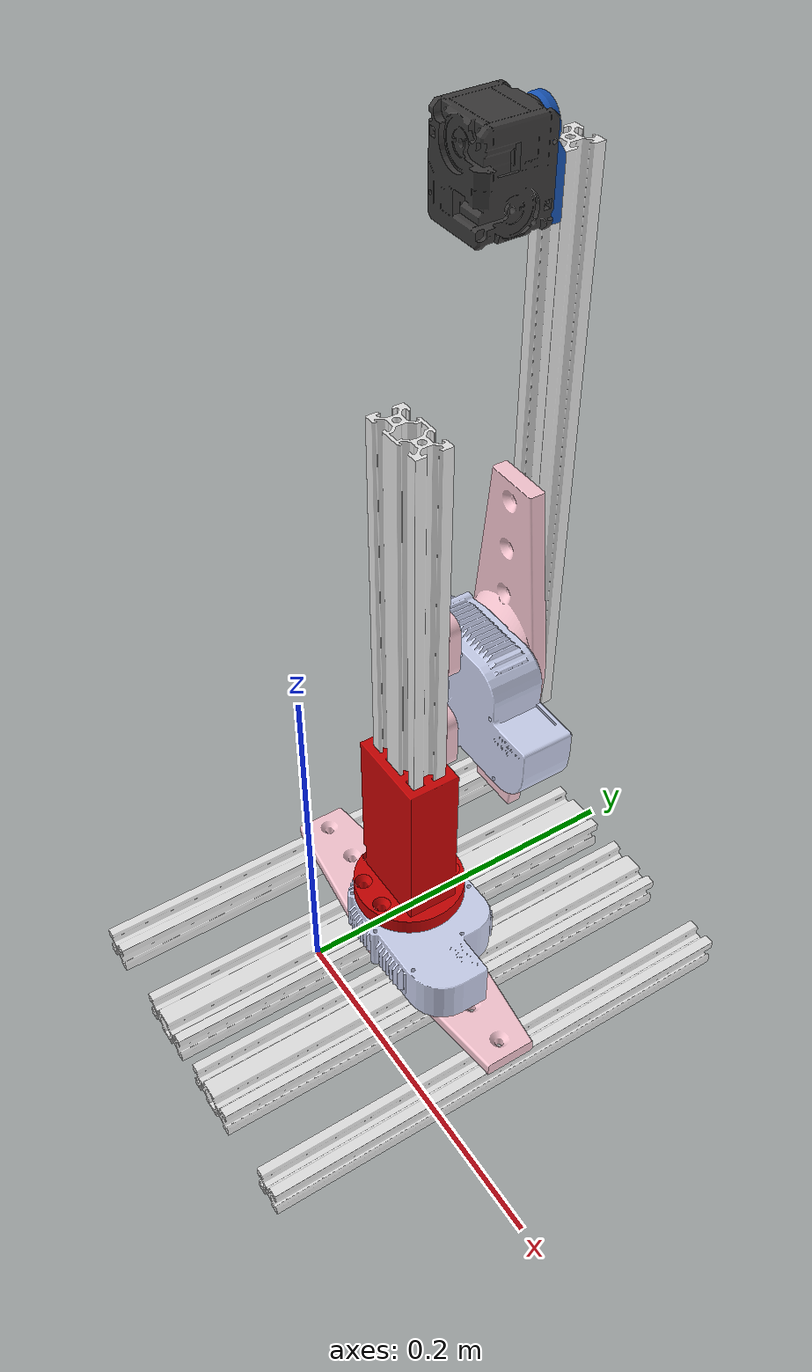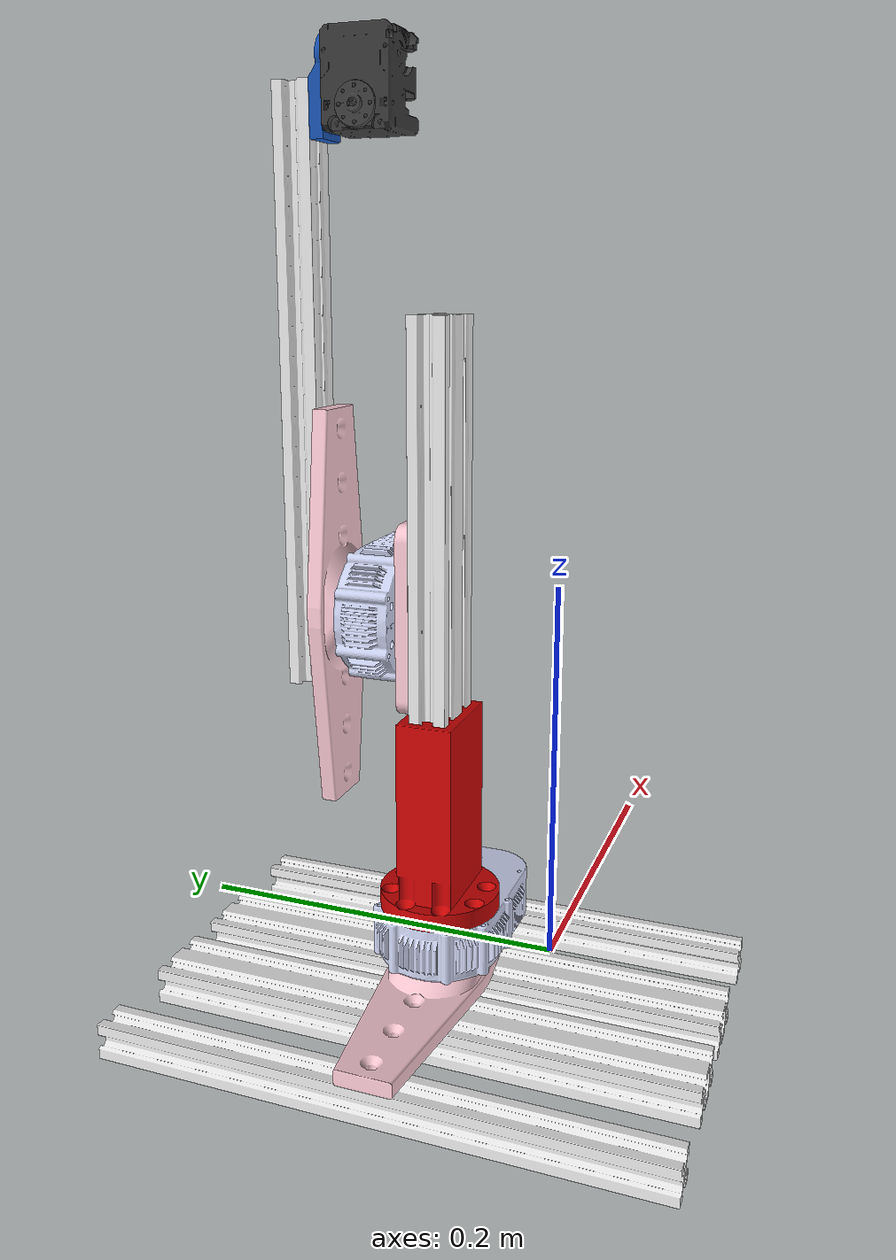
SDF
<sdf version="1.6">
<model name="armbot">
<link name="base_link">
<frame name="base_link_frame"><pose>0 0 0 0 -0 0</pose></frame>
<visual name="base_link_0_hebirotor2020_visual">
<pose>-1.4954010252310467877e-12 0.062950280607105862929 -0.014800447380542768733 -3.141592653589793116 6.1629758220391415926e-32 1.3684555315672011322e-48</pose>
<geometry>
<mesh><uri>file://hebirotor2020.stl</uri></mesh>
</geometry>
<material><ambient>0.97254901960784312376 0.78039215686274510109 0.82352941176470584317 1</ambient><diffuse>0.97254901960784312376 0.78039215686274510109 0.82352941176470584317 1</diffuse><specular>0.1 0.1 0.1 1</specular><emissive>0 0 0 0</emissive></material>
</visual>
<collision name="base_link_0_hebirotor2020_visual">
<pose>-1.4954010252310467877e-12 0.062950280607105862929 -0.014800447380542768733 -3.141592653589793116 6.1629758220391415926e-32 1.3684555315672011322e-48</pose>
<geometry>
<mesh><uri>file://armbot_description/onshape_to_robot/armbot/hebirotor2020.stl</uri></mesh>
</geometry>
</collision>
<inertial>
<pose frame="base_link_frame">1.471073017230224444e-06 0.062950447604268128243 -0.024329139199410744487 0 0 0</pose>
<mass>0.10897536745364015676</mass>
<inertia><ixx>2.0995325698152185787e-05</ixx><ixy>7.161065988428246499e-10</ixy><ixz>-5.0057125776953910516e-10</ixz><iyy>0.00033109911054740619922</iyy><iyz>-5.8223854087903742578e-11</iyz><izz>0.0003490797833931392276</izz></inertia>
</inertial>
</link>

<link name="2040_t-slot_(1ft)">
<frame name="2040_t-slot_(1ft)_frame"><pose>0 0 0 0 -0 0</pose></frame>
<visual name="2040_t-slot_(1ft)_0_2040_t-slot_(1ft)_visual">
<pose>-0.029018909366434194469 0.062950280607105821296 -0.040500447380543092013 -1.570796326794896558 -1.5707963267948961139 0</pose>
<geometry>
<mesh><uri>file://2040_t-slot_(1ft).stl</uri></mesh>
</geometry>
<material><ambient>0.90196078431372550543 0.90196078431372550543 0.90196078431372550543 1</ambient><diffuse>0.90196078431372550543 0.90196078431372550543 0.90196078431372550543 1</diffuse><specular>0.1 0.1 0.1 1</specular><emissive>0 0 0 0</emissive></material>
</visual>
<collision name="2040_t-slot_(1ft)_0_2040_t-slot_(1ft)_visual">
<pose>-0.029018909366434194469 0.062950280607105821296 -0.040500447380543092013 -1.570796326794896558 -1.5707963267948961139 0</pose>
<geometry>
<mesh><uri>file://armbot_description/onshape_to_robot/armbot/2040_t-slot_(1ft).stl</uri></mesh>
</geometry>
</collision>
<inertial>
<pose frame="2040_t-slot_(1ft)_frame">-0.028518281485979575518 0.062950280607105835173 -0.040500447380543071196 0 0 0</pose>
<mass>0.25219173558876550878</mass>
<inertia><ixx>0.0019627392288486733216</ixx><ixy>2.2357954006535848664e-19</ixy><ixz>4.4935318686711459992e-19</ixz><iyy>5.1086237781545882535e-05</iyy><iyz>1.0567838541281127762e-19</iyz><izz>0.0019932434921116392104</izz></inertia>
</inertial>
</link>

<joint name="Base2040_To_Base_HebiRotor2020" type="fixed">
<pose>-0.038518909366434213315 0.062950280607105876807 -0.030500447380542996395 1.7347234759768063549e-16 -1.1102230246249800328e-16 1.1102230246371817388e-16</pose>
<parent>base_link</parent>
<child>2040_t-slot_(1ft)</child>
<axis>
<xyz>0 0 1</xyz>
<limit><effort>1</effort><velocity>20</velocity></limit>
</axis>
</joint>

<link name="hebi_rotor_disc_">
<frame name="hebi_rotor_disc__frame"><pose>0 0 0 0 -0 0</pose></frame>
<visual name="hebi_rotor_disc__0_hebi_rotor_disc__visual">
<pose>-1.4954010252310467877e-12 0.062950280607105862929 0.0015495526194574602008 1.5707963267948970021 -2.2204460492511265937e-16 -2.2204460492878865258e-16</pose>
<geometry>
<mesh><uri>file://hebi_rotor_disc_.stl</uri></mesh>
</geometry>
<material><ambient>0.79607843137254896693 0.82352941176470584317 0.9372549019607843146 1</ambient><diffuse>0.79607843137254896693 0.82352941176470584317 0.9372549019607843146 1</diffuse><specular>0.1 0.1 0.1 1</specular><emissive>0 0 0 0</emissive></material>
</visual>
<collision name="hebi_rotor_disc__0_hebi_rotor_disc__visual">
<pose>-1.4954010252310467877e-12 0.062950280607105862929 0.0015495526194574602008 1.5707963267948970021 -2.2204460492511265937e-16 -2.2204460492878865258e-16</pose>
<geometry>
<mesh><uri>file://armbot_description/onshape_to_robot/armbot/hebi_rotor_disc_.stl</uri></mesh>
</geometry>
</collision>
<inertial>
<pose frame="hebi_rotor_disc__frame">5.3210720575163516404e-07 0.062962573548964742565 -0.011059638472179545571 0 0 0</pose>
<mass>0.04989516048000000592</mass>
<inertia><ixx>1.07173576662662712e-05</ixx><ixy>3.2637328668163764693e-13</ixy><ixz>9.0024786475135361292e-11</ixz><iyy>1.0829283098185201329e-05</iyy><iyz>5.8060078117055951969e-10</iyz><izz>2.1283842582398623794e-05</izz></inertia>
</inertial>
</link>

<link name="hebi_stator_">
<frame name="hebi_stator__frame"><pose>0 0 0 0 -0 0</pose></frame>
<visual name="hebi_stator__0_hebi_stator__visual">
<pose>-1.4953940863371428804e-12 0.062950280607105862929 0.0015495526194573181703 1.5707963267948983344 1.9264273792869010058e-15 1.8318679906314514937e-15</pose>
<geometry>
<mesh><uri>file://hebi_stator_.stl</uri></mesh>
</geometry>
<material><ambient>0.79607843137254896693 0.82352941176470584317 0.9372549019607843146 1</ambient><diffuse>0.79607843137254896693 0.82352941176470584317 0.9372549019607843146 1</diffuse><specular>0.1 0.1 0.1 1</specular><emissive>0 0 0 0</emissive></material>
</visual>
<collision name="hebi_stator__0_hebi_stator__visual">
<pose>-1.4953940863371428804e-12 0.062950280607105862929 0.0015495526194573181703 1.5707963267948983344 1.9264273792869010058e-15 1.8318679906314514937e-15</pose>
<geometry>
<mesh><uri>file://armbot_description/onshape_to_robot/armbot/hebi_stator_.stl</uri></mesh>
</geometry>
</collision>
<inertial>
<pose frame="hebi_stator__frame">0.018552404495652048688 0.06049688322172034477 0.0024470792015108735334 0 0 0</pose>
<mass>0.29483503920000003751</mass>
<inertia><ixx>0.00012040144433771510159</ixx><ixy>2.6094887648047714111e-05</ixy><ixz>4.5177550717945621581e-06</ixz><iyy>0.00024371596634354403678</iyy><iyz>-5.7552027333034358279e-07</iyz><izz>0.00032527976775372359312</izz></inertia>
</inertial>
</link>

<link name="hebistatornormal2040">
<frame name="hebistatornormal2040_frame"><pose>0 0 0 0 -0 0</pose></frame>
<visual name="hebistatornormal2040_0_hebistatornormal2040_visual">
<pose>-0.0098365463847162933758 0.062950280607105862929 0.016549552619457365971 -1.5707963267948992225 1.9264273792869014003e-15 1.8318679906314514937e-15</pose>
<geometry>
<mesh><uri>file://hebistatornormal2040.stl</uri></mesh>
</geometry>
<material><ambient>0.78823529411764703401 0.011764705882352941013 0.011764705882352941013 1</ambient><diffuse>0.78823529411764703401 0.011764705882352941013 0.011764705882352941013 1</diffuse><specular>0.1 0.1 0.1 1</specular><emissive>0 0 0 0</emissive></material>
</visual>
<collision name="hebistatornormal2040_0_hebistatornormal2040_visual">
<pose>-0.0098365463847162933758 0.062950280607105862929 0.016549552619457365971 -1.5707963267948992225 1.9264273792869014003e-15 1.8318679906314514937e-15</pose>
<geometry>
<mesh><uri>file://armbot_description/onshape_to_robot/armbot/hebistatornormal2040.stl</uri></mesh>
</geometry>
</collision>
<inertial>
<pose frame="hebistatornormal2040_frame">0.00033814267055101189519 0.062950280472305553126 0.06311610873457988713 0 0 0</pose>
<mass>0.15651906882669003318</mass>
<inertia><ixx>0.00020929689747816688041</ixx><ixy>5.8518426895910304462e-11</ixy><ixz>1.7895630898721491951e-06</ixz><iyy>0.00022791049151855613986</iyy><iyz>-6.7009726734340701588e-13</iyz><izz>6.266390998557995072e-05</izz></inertia>
</inertial>
</link>

<link name="2040_t-slot_(1ft)_2">
<frame name="2040_t-slot_(1ft)_2_frame"><pose>0 0 0 0 -0 0</pose></frame>
<visual name="2040_t-slot_(1ft)_2_0_2040_t-slot_(1ft)_visual">
<pose>-0.00047689739101589370684 0.062940631613406641809 0.17894955261945677538 -3.1415926535897868987 7.6857623156658274501e-16 1.5707963267948956698</pose>
<geometry>
<mesh><uri>file://2040_t-slot_(1ft).stl</uri></mesh>
</geometry>
<material><ambient>0.90196078431372550543 0.90196078431372550543 0.90196078431372550543 1</ambient><diffuse>0.90196078431372550543 0.90196078431372550543 0.90196078431372550543 1</diffuse><specular>0.1 0.1 0.1 1</specular><emissive>0 0 0 0</emissive></material>
</visual>
<collision name="2040_t-slot_(1ft)_2_0_2040_t-slot_(1ft)_visual">
<pose>-0.00047689739101589370684 0.062940631613406641809 0.17894955261945677538 -3.1415926535897868987 7.6857623156658274501e-16 1.5707963267948956698</pose>
<geometry>
<mesh><uri>file://armbot_description/onshape_to_robot/armbot/2040_t-slot_(1ft).stl</uri></mesh>
</geometry>
</collision>
<inertial>
<pose frame="2040_t-slot_(1ft)_2_frame">2.3730489438724701977e-05 0.062940631613406669564 0.17894955261945674763 0 0 0</pose>
<mass>0.25219173558876550878</mass>
<inertia><ixx>0.0019627392288486785257</ixx><ixy>-1.8796002694634971977e-18</ixy><ixz>-1.2085588971229104773e-17</ixz><iyy>0.0019932434921116027812</iyy><iyz>-1.4926959040347885266e-18</iyz><izz>5.1086237781544418862e-05</izz></inertia>
</inertial>
</link>

<link name="hebistatorrightangle2040">
<frame name="hebistatorrightangle2040_frame"><pose>0 0 0 0 -0 0</pose></frame>
<visual name="hebistatorrightangle2040_0_hebistatorrightangle2040_visual">
<pose>-2.8858539977676757709e-06 0.075165431613406705202 0.17894955261945671987 -3.1415926535897926719 -6.3220621250071017558e-15 3.141592653589788231</pose>
<geometry>
<mesh><uri>file://hebistatorrightangle2040.stl</uri></mesh>
</geometry>
<material><ambient>0.97254901960784312376 0.78039215686274510109 0.82352941176470584317 1</ambient><diffuse>0.97254901960784312376 0.78039215686274510109 0.82352941176470584317 1</diffuse><specular>0.1 0.1 0.1 1</specular><emissive>0 0 0 0</emissive></material>
</visual>
<collision name="hebistatorrightangle2040_0_hebistatorrightangle2040_visual">
<pose>-2.8858539977676757709e-06 0.075165431613406705202 0.17894955261945671987 -3.1415926535897926719 -6.3220621250071017558e-15 3.141592653589788231</pose>
<geometry>
<mesh><uri>file://armbot_description/onshape_to_robot/armbot/hebistatorrightangle2040.stl</uri></mesh>
</geometry>
</collision>
<inertial>
<pose frame="hebistatorrightangle2040_frame">-0.0015817821988269868856 0.076429624660878478504 0.17894955261945671987 0 0 0</pose>
<mass>0.026450088103838233222</mass>
<inertia><ixx>2.5671961898540001794e-05</ixx><ixy>4.596717726566595938e-10</ixy><ixz>-1.391860320647691942e-19</ixz><iyy>2.9117912025297513785e-05</iyy><iyz>-1.9572253538770518845e-20</iyz><izz>3.6560949231525005876e-06</izz></inertia>
</inertial>
</link>

<link name="hebi_stator__2">
<frame name="hebi_stator__2_frame"><pose>0 0 0 0 -0 0</pose></frame>
<visual name="hebi_stator__2_0_hebi_stator__visual">
<pose>0.0019971141460020168205 0.094940631613406836764 0.17894955261945674763 3.1415926535897926719 6.3220621250071025446e-15 -5.0792703376599389223e-15</pose>
<geometry>
<mesh><uri>file://hebi_stator_.stl</uri></mesh>
</geometry>
<material><ambient>0.79607843137254896693 0.82352941176470584317 0.9372549019607843146 1</ambient><diffuse>0.79607843137254896693 0.82352941176470584317 0.9372549019607843146 1</diffuse><specular>0.1 0.1 0.1 1</specular><emissive>0 0 0 0</emissive></material>
</visual>
<collision name="hebi_stator__2_0_hebi_stator__visual">
<pose>0.0019971141460020168205 0.094940631613406836764 0.17894955261945674763 3.1415926535897926719 6.3220621250071025446e-15 -5.0792703376599389223e-15</pose>
<geometry>
<mesh><uri>file://armbot_description/onshape_to_robot/armbot/hebi_stator_.stl</uri></mesh>
</geometry>
</collision>
<inertial>
<pose frame="hebi_stator__2_frame">0.020549518643148828589 0.094043105031353144141 0.17649615523407113926 0 0 0</pose>
<mass>0.29483503920000003751</mass>
<inertia><ixx>0.00012040144433770705139</ixx><ixy>-4.5177550717925241968e-06</ixy><ixz>2.6094887648045579588e-05</ixz><iyy>0.00032527976775372359312</iyy><iyz>5.755202733309428586e-07</iyz><izz>0.00024371596634352869532</izz></inertia>
</inertial>
</link>

<link name="hebi_rotor_disc__2">
<frame name="hebi_rotor_disc__2_frame"><pose>0 0 0 0 -0 0</pose></frame>
<visual name="hebi_rotor_disc__2_0_hebi_rotor_disc__visual">
<pose>0.0019971141460020172542 0.094940631613406809008 0.17894955261945677538 -3.1415926535897842342 1.5707963267948947816 0</pose>
<geometry>
<mesh><uri>file://hebi_rotor_disc_.stl</uri></mesh>
</geometry>
<material><ambient>0.79607843137254896693 0.82352941176470584317 0.9372549019607843146 1</ambient><diffuse>0.79607843137254896693 0.82352941176470584317 0.9372549019607843146 1</diffuse><specular>0.1 0.1 0.1 1</specular><emissive>0 0 0 0</emissive></material>
</visual>
<collision name="hebi_rotor_disc__2_0_hebi_rotor_disc__visual">
<pose>0.0019971141460020172542 0.094940631613406809008 0.17894955261945677538 -3.1415926535897842342 1.5707963267948947816 0</pose>
<geometry>
<mesh><uri>file://armbot_description/onshape_to_robot/armbot/hebi_rotor_disc_.stl</uri></mesh>
</geometry>
</collision>
<inertial>
<pose frame="hebi_rotor_disc__2_frame">0.0020094070878610092133 0.10754982270504366559 0.17894902051075559091 0 0 0</pose>
<mass>0.04989516048000000592</mass>
<inertia><ixx>1.0829283098184981101e-05</ixx><ixy>-5.8060078107269598822e-10</ixy><ixz>-3.2637325736585388656e-13</ixz><iyy>2.1283842582398122351e-05</iyy><iyz>9.0024786408206769138e-11</iyz><izz>1.0717357666266176332e-05</izz></inertia>
</inertial>
</link>

<link name="hebirotor2020">
<frame name="hebirotor2020_frame"><pose>0 0 0 0 -0 0</pose></frame>
<visual name="hebirotor2020_0_hebirotor2020_visual">
<pose>0.0019971141423907002796 0.11129063161340682631 0.17894955261796041679 -1.5707963267948876762 1.5707963267948956698 0</pose>
<geometry>
<mesh><uri>file://hebirotor2020.stl</uri></mesh>
</geometry>
<material><ambient>0.97254901960784312376 0.78039215686274510109 0.82352941176470584317 1</ambient><diffuse>0.97254901960784312376 0.78039215686274510109 0.82352941176470584317 1</diffuse><specular>0.1 0.1 0.1 1</specular><emissive>0 0 0 0</emissive></material>
</visual>
<collision name="hebirotor2020_0_hebirotor2020_visual">
<pose>0.0019971141423907002796 0.11129063161340682631 0.17894955261796041679 -1.5707963267948876762 1.5707963267948956698 0</pose>
<geometry>
<mesh><uri>file://armbot_description/onshape_to_robot/armbot/hebirotor2020.stl</uri></mesh>
</geometry>
</collision>
<inertial>
<pose frame="hebirotor2020_frame">0.0019972811395530610037 0.12081932343227466675 0.17894808154344776785 0 0 0</pose>
<mass>0.10897536745364015676</mass>
<inertia><ixx>0.00033109911054739871823</ixx><ixy>5.8223854423374943784e-11</ixy><ixz>-7.1610659891940389364e-10</ixz><iyy>0.0003490797833931295782</iyy><iyz>-5.0057125799117346489e-10</iyz><izz>2.0995325698152118025e-05</izz></inertia>
</inertial>
</link>

<link name="2020_t-slot_(1ft)">
<frame name="2020_t-slot_(1ft)_frame"><pose>0 0 0 0 -0 0</pose></frame>
<visual name="2020_t-slot_(1ft)_0_2020_t-slot_(1ft)_visual">
<pose>0.0019091199108999220343 0.13699063161340688244 0.28837269329463022238 3.141592653589793116 2.1579279646126705539e-18 1.5707963267948878983</pose>
<geometry>
<mesh><uri>file://2020_t-slot_(1ft).stl</uri></mesh>
</geometry>
<material><ambient>0.90196078431372550543 0.90196078431372550543 0.90196078431372550543 1</ambient><diffuse>0.90196078431372550543 0.90196078431372550543 0.90196078431372550543 1</diffuse><specular>0.1 0.1 0.1 1</specular><emissive>0 0 0 0</emissive></material>
</visual>
<collision name="2020_t-slot_(1ft)_0_2020_t-slot_(1ft)_visual">
<pose>0.0019091199108999220343 0.13699063161340688244 0.28837269329463022238 3.141592653589793116 2.1579279646126705539e-18 1.5707963267948878983</pose>
<geometry>
<mesh><uri>file://armbot_description/onshape_to_robot/armbot/2020_t-slot_(1ft).stl</uri></mesh>
</geometry>
</collision>
<inertial>
<pose frame="2020_t-slot_(1ft)_frame">0.0019091199108999098912 0.13699063161340688244 0.28837269329463022238 0 0 0</pose>
<mass>0.14544346412865538642</mass>
<inertia><ixx>0.0011319123253517666874</ixx><ixy>-1.0053401003700349943e-18</ixy><ixz>3.0182296455238759572e-19</ixz><iyy>0.0011319123253517653863</iyy><iyz>1.6210887548631123323e-20</iyz><izz>1.1801323089674828812e-05</izz></inertia>
</inertial>
</link>

<link name="dynamount2020">
<frame name="dynamount2020_frame"><pose>0 0 0 0 -0 0</pose></frame>
<visual name="dynamount2020_0_dynamount2020_visual">
<pose>0.0021590929743359591787 0.1144906316134070845 0.45061598449655643206 -8.9095397726167392419e-15 -1.5707963267948952257 0</pose>
<geometry>
<mesh><uri>file://dynamount2020.stl</uri></mesh>
</geometry>
<material><ambient>0.08627450980392156743 0.31764705882352939348 0.69019607843137253944 1</ambient><diffuse>0.08627450980392156743 0.31764705882352939348 0.69019607843137253944 1</diffuse><specular>0.1 0.1 0.1 1</specular><emissive>0 0 0 0</emissive></material>
</visual>
<collision name="dynamount2020_0_dynamount2020_visual">
<pose>0.0021590929743359591787 0.1144906316134070845 0.45061598449655643206 -8.9095397726167392419e-15 -1.5707963267948952257 0</pose>
<geometry>
<mesh><uri>file://armbot_description/onshape_to_robot/armbot/dynamount2020.stl</uri></mesh>
</geometry>
</collision>
<inertial>
<pose frame="dynamount2020_frame">0.0021785519551103379662 0.12278152102568964943 0.43342390725554102993 0 0 0</pose>
<mass>0.00656743569264333759</mass>
<inertia><ixx>1.1208584748380474788e-06</ixx><ixy>3.0603079136605307637e-11</ixy><ixz>7.5996646431153631788e-10</ixz><iyy>1.338396620352668297e-06</iyy><iyz>9.1652725861713724177e-08</iyz><izz>2.8707760317925074084e-07</izz></inertia>
</inertial>
</link>

<link name="dc11_a01_horn_ref">
<frame name="dc11_a01_horn_ref_frame"><pose>0 0 0 0 -0 0</pose></frame>
<visual name="dc11_a01_horn_ref_0_dc11_a01_horn_ref_visual">
<pose>0.0021590929743359552756 0.11449063161340711225 0.45061598449655637655 -3.1415926535897926719 -9.2736377515082809145e-16 3.1415926535897842342</pose>
<geometry>
<mesh><uri>file://dc11_a01_horn_ref.stl</uri></mesh>
</geometry>
<material><ambient>0.24313725490196078094 0.24313725490196078094 0.24313725490196078094 1</ambient><diffuse>0.24313725490196078094 0.24313725490196078094 0.24313725490196078094 1</diffuse><specular>0.1 0.1 0.1 1</specular><emissive>0 0 0 0</emissive></material>
</visual>
<collision name="dc11_a01_horn_ref_0_dc11_a01_horn_ref_visual">
<pose>0.0021590929743359552756 0.11449063161340711225 0.45061598449655637655 -3.1415926535897926719 -9.2736377515082809145e-16 3.1415926535897842342</pose>
<geometry>
<mesh><uri>file://armbot_description/onshape_to_robot/armbot/dc11_a01_horn_ref.stl</uri></mesh>
</geometry>
</collision>
<inertial>
<pose frame="dc11_a01_horn_ref_frame">0.0021594327650144747033 0.11640425902220057075 0.45061598450047324338 0 0 0</pose>
<mass>0.011339809200000001976</mass>
<inertia><ixx>3.1759308584662223659e-07</ixx><ixy>-9.2200454309273388809e-11</ixy><ixz>2.0801806985028239277e-23</ixz><iyy>6.0240878644093416683e-07</iyy><iyz>-1.1853576278611777769e-16</iyz><izz>3.1590939815625371744e-07</izz></inertia>
</inertial>
</link>

<link name="dc14_a01_ref">
<frame name="dc14_a01_ref_frame"><pose>0 0 0 0 -0 0</pose></frame>
<visual name="dc14_a01_ref_0_dc14_a01_ref_visual">
<pose>0.0021590929743358078241 0.099240631638121121205 0.4386159844965564214 1.5707963267948956698 -9.2736377515082572487e-16 3.1415926535897842342</pose>
<geometry>
<mesh><uri>file://dc14_a01_ref.stl</uri></mesh>
</geometry>
<material><ambient>0.22352941176470589313 0.21960784313725489891 0.21960784313725489891 1</ambient><diffuse>0.22352941176470589313 0.21960784313725489891 0.21960784313725489891 1</diffuse><specular>0.1 0.1 0.1 1</specular><emissive>0 0 0 0</emissive></material>
</visual>
<collision name="dc14_a01_ref_0_dc14_a01_ref_visual">
<pose>0.0021590929743358078241 0.099240631638121121205 0.4386159844965564214 1.5707963267948956698 -9.2736377515082572487e-16 3.1415926535897842342</pose>
<geometry>
<mesh><uri>file://armbot_description/onshape_to_robot/armbot/dc14_a01_ref.stl</uri></mesh>
</geometry>
</collision>
<inertial>
<pose frame="dc14_a01_ref_frame">0.0015276003594247734158 0.099872021897029344961 0.43861615083760585598 0 0 0</pose>
<mass>0.43091274960000003347</mass>
<inertia><ixx>0.00011841540290033444373</ixx><ixy>-2.8692028355178117849e-06</ixy><ixz>-5.4747109549835380958e-09</ixz><iyy>0.00011841553809440013006</iyy><iyz>-7.0415392308683495442e-09</iyz><izz>8.3991546790709148808e-05</izz></inertia>
</inertial>
</link>

<link name="dc11_a01_horn_ref_2">
<frame name="dc11_a01_horn_ref_2_frame"><pose>0 0 0 0 -0 0</pose></frame>
<visual name="dc11_a01_horn_ref_2_0_dc11_a01_horn_ref_visual">
<pose>-0.013340907025664261454 0.099240631638121204472 0.42661598449655641074 1.0655196960069271671e-15 -4.4971946134969571871e-05 1.5707963267948876762</pose>
<geometry>
<mesh><uri>file://dc11_a01_horn_ref.stl</uri></mesh>
</geometry>
<material><ambient>0.24313725490196078094 0.24313725490196078094 0.24313725490196078094 1</ambient><diffuse>0.24313725490196078094 0.24313725490196078094 0.24313725490196078094 1</diffuse><specular>0.1 0.1 0.1 1</specular><emissive>0 0 0 0</emissive></material>
</visual>
<collision name="dc11_a01_horn_ref_2_0_dc11_a01_horn_ref_visual">
<pose>-0.013340907025664261454 0.099240631638121204472 0.42661598449655641074 1.0655196960069271671e-15 -4.4971946134969571871e-05 1.5707963267948876762</pose>
<geometry>
<mesh><uri>file://armbot_description/onshape_to_robot/armbot/dc11_a01_horn_ref.stl</uri></mesh>
</geometry>
</collision>
<inertial>
<pose frame="dc11_a01_horn_ref_2_frame">-0.015254534434457723419 0.099240291847443248829 0.42661598447735848971 0 0 0</pose>
<mass>0.011339809200000001976</mass>
<inertia><ixx>6.0240878644093353155e-07</ixx><ixy>-9.2200454215737446578e-11</ixy><ixz>-4.2649699026120190151e-15</ixz><iyy>3.1759308584321748178e-07</iyy><iyz>7.5718712122591341534e-14</iyz><izz>3.1590939815965931928e-07</izz></inertia>
</inertial>
</link>

<joint name="DynaRotor_To_Dynamixel_J3" type="revolute">
<pose>-0.016840907025664261093 0.099240631638121232228 0.42661598449655641074 -1.5707963267948954478 -4.4971946134969571871e-05 1.5707963267948876762</pose>
<parent>dc14_a01_ref</parent>
<child>dc11_a01_horn_ref_2</child>
<axis>
<xyz>0 0 1</xyz>
<limit><effort>1</effort><velocity>20</velocity><lower>-50.265482457436689856</lower><upper>50.265482457436689856</upper></limit>
</axis>
</joint>

<joint name="DynaRotor_To_Dynamixel_J2" type="revolute">
<pose>0.0021590929743359808628 0.11824063163812113808 0.45061598449655643206 1.5707963267948956698 -9.2736377515082572487e-16 3.1415926535897842342</pose>
<parent>dc11_a01_horn_ref</parent>
<child>dc14_a01_ref</child>
<axis>
<xyz>0 0 1</xyz>
<limit><effort>1</effort><velocity>20</velocity><lower>0</lower><upper>4.712388980384689674</upper></limit>
</axis>
</joint>

<joint name="DynaRotor_to_DynaMount" type="fixed">
<pose>0.010159092974335986667 0.11799063161340704597 0.45061598449655637655 1.5707963267948970021 -9.2736377515082809145e-16 3.1415926535897842342</pose>
<parent>dynamount2020</parent>
<child>dc11_a01_horn_ref</child>
<axis>
<xyz>0 0 1</xyz>
<limit><effort>1</effort><velocity>20</velocity></limit>
</axis>
</joint>

<joint name="DynaMount_To_2020" type="fixed">
<pose>0.0021761141423912019541 0.12699063161340706785 0.42677269329463052294 -1.5707963267949054398 -1.5707963267948952257 0</pose>
<parent>2020_t-slot_(1ft)</parent>
<child>dynamount2020</child>
<axis>
<xyz>0 0 1</xyz>
<limit><effort>1</effort><velocity>20</velocity></limit>
</axis>
</joint>

<joint name="2020_To_HebiRotor2020" type="fixed">
<pose>0.0089971141423909571644 0.12699063161340679029 0.28837269329463027789 1.570796326794896558 -2.4722131838589761167e-16 -9.5479180117761947863e-15</pose>
<parent>hebirotor2020</parent>
<child>2020_t-slot_(1ft)</child>
<axis>
<xyz>0 0 1</xyz>
<limit><effort>1</effort><velocity>20</velocity></limit>
</axis>
</joint>

<joint name="HebiRotor2020_to_J1_Hebi" type="fixed">
<pose>-0.0046998459203868008655 0.1109906316134068871 0.1951174444384043416 1.5707963267949056618 1.5707963267948956698 0</pose>
<parent>hebi_rotor_disc__2</parent>
<child>hebirotor2020</child>
<axis>
<xyz>0 0 1</xyz>
<limit><effort>1</effort><velocity>20</velocity></limit>
</axis>
</joint>

<joint name="Hebi_Rotor_J1" type="revolute">
<pose>0.0019971141460021057251 0.10494063161340683177 0.17894955261945674763 1.5707963267949054398 1.5707963267948947816 0</pose>
<parent>hebi_stator__2</parent>
<child>hebi_rotor_disc__2</child>
<axis>
<xyz>0 0 1</xyz>
<limit><effort>1</effort><velocity>20</velocity><lower>-2.356194490192344837</lower><upper>2.356194490192344837</upper></limit>
</axis>
</joint>

<joint name="Hebi_J1_Stator_To_HebiStatorRightAngle" type="fixed">
<pose>-0.010002885853997929219 0.079940631613406934464 0.20294955261945682445 1.5707963267948958919 6.3220621250071025446e-15 -5.0792703376599389223e-15</pose>
<parent>hebistatorrightangle2040</parent>
<child>hebi_stator__2</child>
<axis>
<xyz>0 0 1</xyz>
<limit><effort>1</effort><velocity>20</velocity></limit>
</axis>
</joint>

<joint name="HebiStatorRightAngle_To_2040" type="fixed">
<pose>-0.012002885853998130489 0.072940631613406692324 0.17894955261945680314 -1.5707963267948958919 -6.3220621250071017558e-15 3.141592653589788231</pose>
<parent>2040_t-slot_(1ft)_2</parent>
<child>hebistatorrightangle2040</child>
<axis>
<xyz>0 0 1</xyz>
<limit><effort>1</effort><velocity>20</velocity></limit>
</axis>
</joint>

<joint name="2040_To_HebiStatorNormal" type="fixed">
<pose>-0.019903674086313591363 0.072867408308703238151 0.026549552619457350566 -3.1415926535897868987 7.6857623156658274501e-16 1.5707963267948956698</pose>
<parent>hebistatornormal2040</parent>
<child>2040_t-slot_(1ft)_2</child>
<axis>
<xyz>0 0 1</xyz>
<limit><effort>1</effort><velocity>20</velocity></limit>
</axis>
</joint>

<joint name="Hebi_Base_Stator_To_HebiStatorNormal" type="fixed">
<pose>-0.026000000001496159641 0.072950280607106149366 0.01654955261945736944 3.1415926535897904515 1.9264273792869014003e-15 1.8318679906314514937e-15</pose>
<parent>hebi_stator_</parent>
<child>hebistatornormal2040</child>
<axis>
<xyz>0 0 1</xyz>
<limit><effort>1</effort><velocity>20</velocity></limit>
</axis>
</joint>

<joint name="Hebi_Rotor_Base" type="revolute">
<pose>-1.4953877848693203733e-12 0.062950280607105849051 -0.0084504473805426718463 -3.1415926535897913396 1.9264273792869010058e-15 1.8318679906314514937e-15</pose>
<parent>hebi_rotor_disc_</parent>
<child>hebi_stator_</child>
<axis>
<xyz>0 0 1</xyz>
<limit><effort>1</effort><velocity>20</velocity><lower>-6.283185307179586232</lower><upper>6.283185307179586232</upper></limit>
</axis>
</joint>

<joint name="HebiRotor2020_To_HebiBase" type="fixed">
<pose>-1.4954045890469558738e-12 0.062950280607105862929 -0.014500447380542770548 -3.141592653589793116 -2.2204460492511265937e-16 -2.2204460492878865258e-16</pose>
<parent>base_link</parent>
<child>hebi_rotor_disc_</child>
<axis>
<xyz>0 0 1</xyz>
<limit><effort>1</effort><velocity>20</velocity></limit>
</axis>
</joint>

<link name="2020_t-slot_(1ft)_2">
<frame name="2020_t-slot_(1ft)_2_frame"><pose>0 0 0 0 -0 0</pose></frame>
<visual name="2020_t-slot_(1ft)_2_0_2020_t-slot_(1ft)_visual">
<pose>-0.094518909366434339381 0.062950280607105821296 -0.040500447380543001807 -1.570796326794896558 3.3276911482033588679e-16 -1.7535064207747780445e-30</pose>
<geometry>
<mesh><uri>file://2020_t-slot_(1ft).stl</uri></mesh>
</geometry>
<material><ambient>0.90196078431372550543 0.90196078431372550543 0.90196078431372550543 1</ambient><diffuse>0.90196078431372550543 0.90196078431372550543 0.90196078431372550543 1</diffuse><specular>0.1 0.1 0.1 1</specular><emissive>0 0 0 0</emissive></material>
</visual>
<collision name="2020_t-slot_(1ft)_2_0_2020_t-slot_(1ft)_visual">
<pose>-0.094518909366434339381 0.062950280607105821296 -0.040500447380543001807 -1.570796326794896558 3.3276911482033588679e-16 -1.7535064207747780445e-30</pose>
<geometry>
<mesh><uri>file://armbot_description/onshape_to_robot/armbot/2020_t-slot_(1ft).stl</uri></mesh>
</geometry>
</collision>
<inertial>
<pose frame="2020_t-slot_(1ft)_2_frame">-0.094518909366434353259 0.062950280607105821296 -0.04050044738054298793 0 0 0</pose>
<mass>0.14544346412865538642</mass>
<inertia><ixx>0.0011319123253517623506</ixx><ixy>-1.9868098498108078566e-33</ixy><ixz>8.3636533823379989662e-35</ixz><iyy>1.1801323089674788154e-05</iyy><iyz>-6.9950982647662345838e-20</iyz><izz>0.0011319123253517627842</izz></inertia>
</inertial>
</link>

<joint name="Base_HebiRotor2020_Base2020" type="fixed">
<pose>-0.094518909366434339381 0.062950280607105876807 -0.030500447380542985987 6.2450045135165043073e-17 1.8489588698446830042e-30 -1.7742878670148968428e-30</pose>
<parent>base_link</parent>
<child>2020_t-slot_(1ft)_2</child>
<axis>
<xyz>0 0 1</xyz>
<limit><effort>1</effort><velocity>20</velocity></limit>
</axis>
</joint>

<link name="2020_t-slot_(1ft)_3">
<frame name="2020_t-slot_(1ft)_3_frame"><pose>0 0 0 0 -0 0</pose></frame>
<visual name="2020_t-slot_(1ft)_3_0_2020_t-slot_(1ft)_visual">
<pose>0.09451890936344353733 0.062950280607105807418 -0.040500447380543140585 -1.570796326794896558 3.3276911482033800685e-16 7.0734422548816890009e-32</pose>
<geometry>
<mesh><uri>file://2020_t-slot_(1ft).stl</uri></mesh>
</geometry>
<material><ambient>0.90196078431372550543 0.90196078431372550543 0.90196078431372550543 1</ambient><diffuse>0.90196078431372550543 0.90196078431372550543 0.90196078431372550543 1</diffuse><specular>0.1 0.1 0.1 1</specular><emissive>0 0 0 0</emissive></material>
</visual>
<collision name="2020_t-slot_(1ft)_3_0_2020_t-slot_(1ft)_visual">
<pose>0.09451890936344353733 0.062950280607105807418 -0.040500447380543140585 -1.570796326794896558 3.3276911482033800685e-16 7.0734422548816890009e-32</pose>
<geometry>
<mesh><uri>file://armbot_description/onshape_to_robot/armbot/2020_t-slot_(1ft).stl</uri></mesh>
</geometry>
</collision>
<inertial>
<pose frame="2020_t-slot_(1ft)_3_frame">0.094518909363443523453 0.062950280607105807418 -0.040500447380543126707 0 0 0</pose>
<mass>0.14544346412865538642</mass>
<inertia><ixx>0.0011319123253517675547</ixx><ixy>5.7131900784529778845e-35</ixy><ixz>-4.3773943742614145648e-36</ixz><iyy>1.1801323089675069369e-05</iyy><iyz>-6.9950982647664283805e-20</iyz><izz>0.0011319123253517948766</izz></inertia>
</inertial>
</link>

<joint name="Base_HebiRotor2020_Base2020_2" type="fixed">
<pose>0.09451890936344353733 0.062950280607105862929 -0.030500447380542985987 6.2450045135164944465e-17 -2.0353893147289206465e-32 4.9952976308697872753e-32</pose>
<parent>base_link</parent>
<child>2020_t-slot_(1ft)_3</child>
<axis>
<xyz>0 0 1</xyz>
<limit><effort>1</effort><velocity>20</velocity></limit>
</axis>
</joint>

<link name="2040_t-slot_(1ft)_3">
<frame name="2040_t-slot_(1ft)_3_frame"><pose>0 0 0 0 -0 0</pose></frame>
<visual name="2040_t-slot_(1ft)_3_0_2040_t-slot_(1ft)_visual">
<pose>0.029018909363443392418 0.06295028060710591844 -0.040500447380543098952 1.570796326794896558 -1.570796326794896336 0</pose>
<geometry>
<mesh><uri>file://2040_t-slot_(1ft).stl</uri></mesh>
</geometry>
<material><ambient>0.90196078431372550543 0.90196078431372550543 0.90196078431372550543 1</ambient><diffuse>0.90196078431372550543 0.90196078431372550543 0.90196078431372550543 1</diffuse><specular>0.1 0.1 0.1 1</specular><emissive>0 0 0 0</emissive></material>
</visual>
<collision name="2040_t-slot_(1ft)_3_0_2040_t-slot_(1ft)_visual">
<pose>0.029018909363443392418 0.06295028060710591844 -0.040500447380543098952 1.570796326794896558 -1.570796326794896336 0</pose>
<geometry>
<mesh><uri>file://armbot_description/onshape_to_robot/armbot/2040_t-slot_(1ft).stl</uri></mesh>
</geometry>
</collision>
<inertial>
<pose frame="2040_t-slot_(1ft)_3_frame">0.028518281482988773468 0.062950280607105904562 -0.040500447380543078135 0 0 0</pose>
<mass>0.25219173558876550878</mass>
<inertia><ixx>0.0019627392288486750563</ixx><ixy>6.4285580421888812322e-32</ixy><ixz>-1.0150876684247938794e-20</ixz><iyy>5.1086237781545936745e-05</iyy><iyz>-3.4825400179781643719e-19</iyz><izz>0.0019932434921116409451</izz></inertia>
</inertial>
</link>

<joint name="Base_HebiRotor2020_Base2040_2" type="fixed">
<pose>0.038518909363443418203 0.062950280607105862929 -0.030500447380542996395 4.8572257327350709577e-17 4.9303806576313128362e-32 -3.141592653589793116</pose>
<parent>base_link</parent>
<child>2040_t-slot_(1ft)_3</child>
<axis>
<xyz>0 0 1</xyz>
<limit><effort>1</effort><velocity>20</velocity></limit>
</axis>
</joint>

</model>
</sdf>
